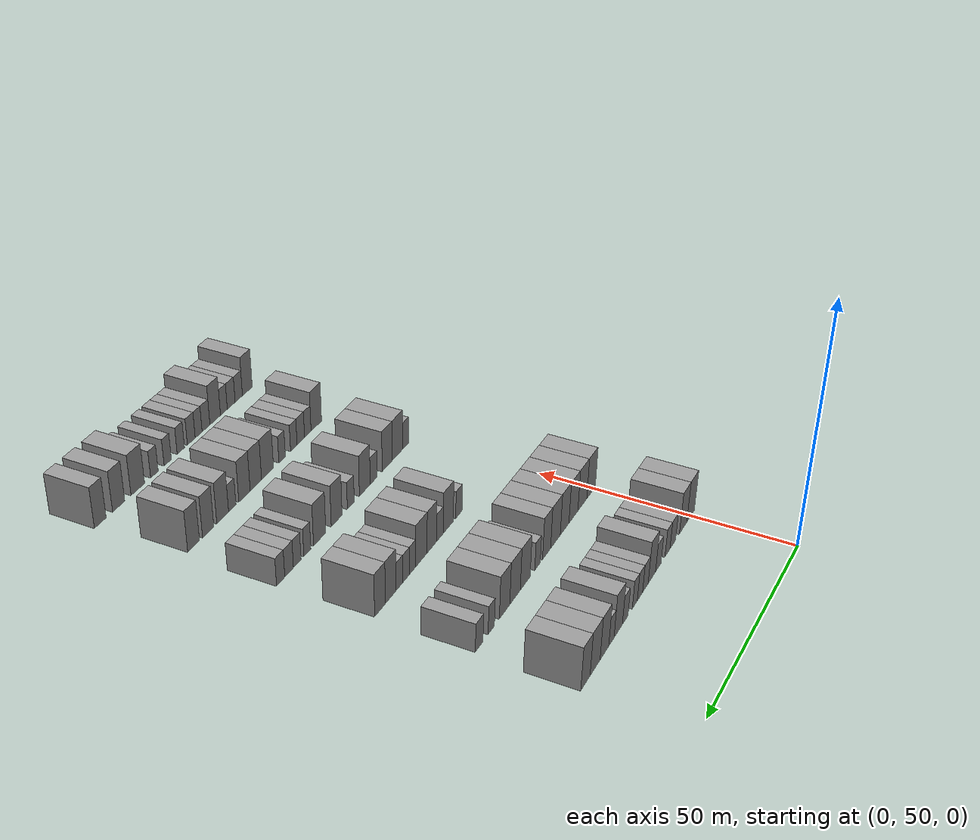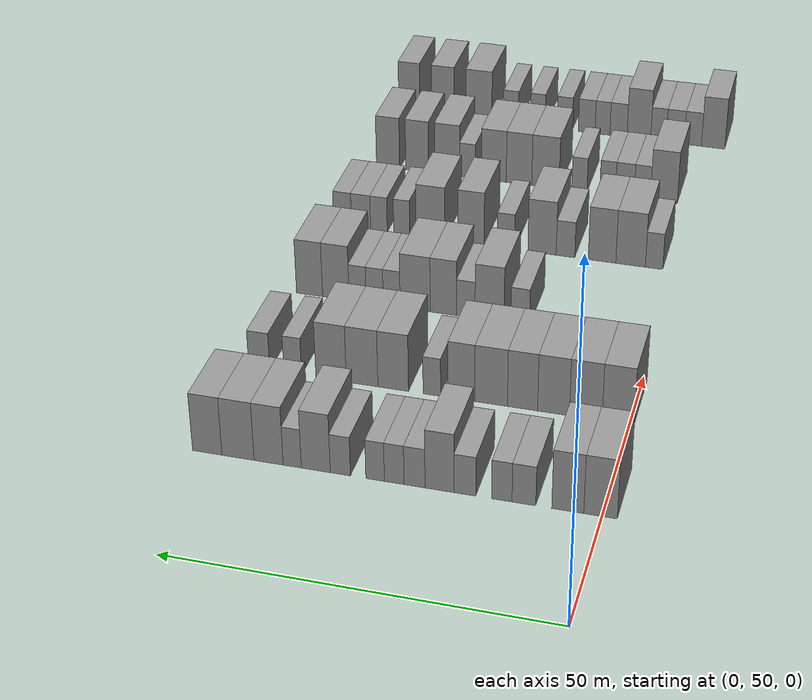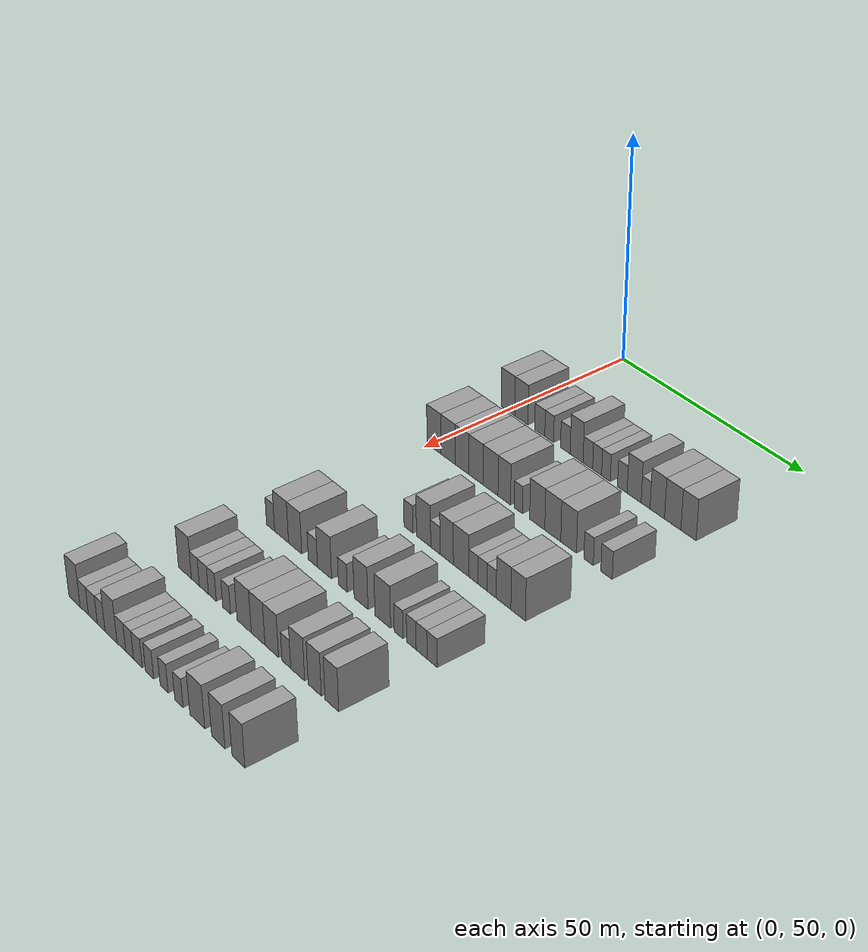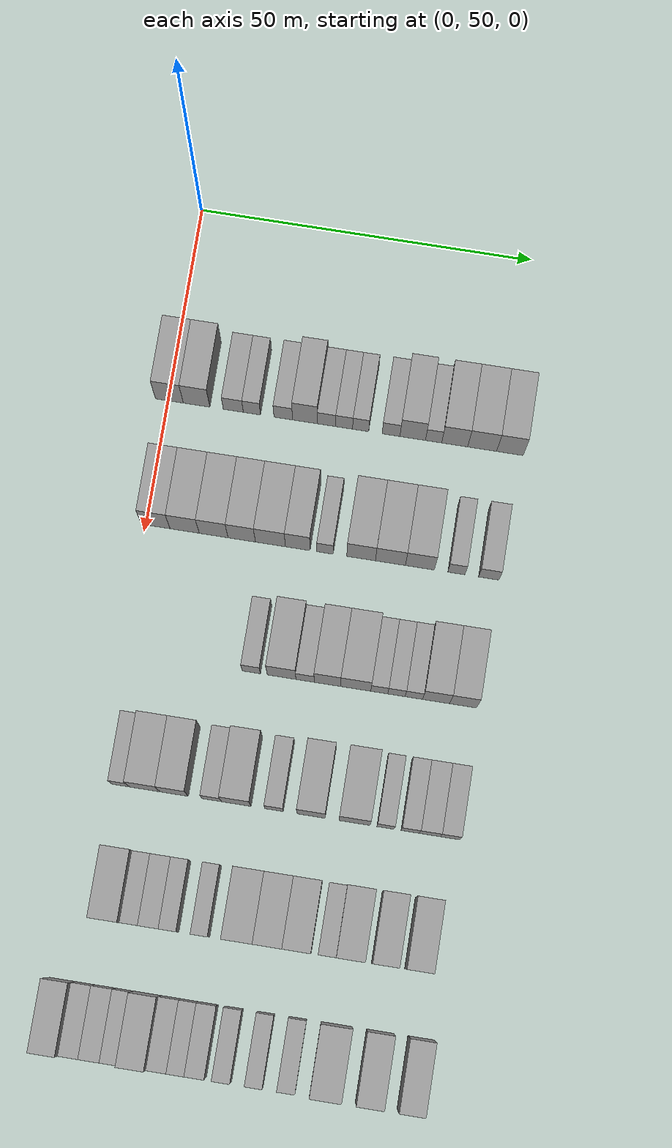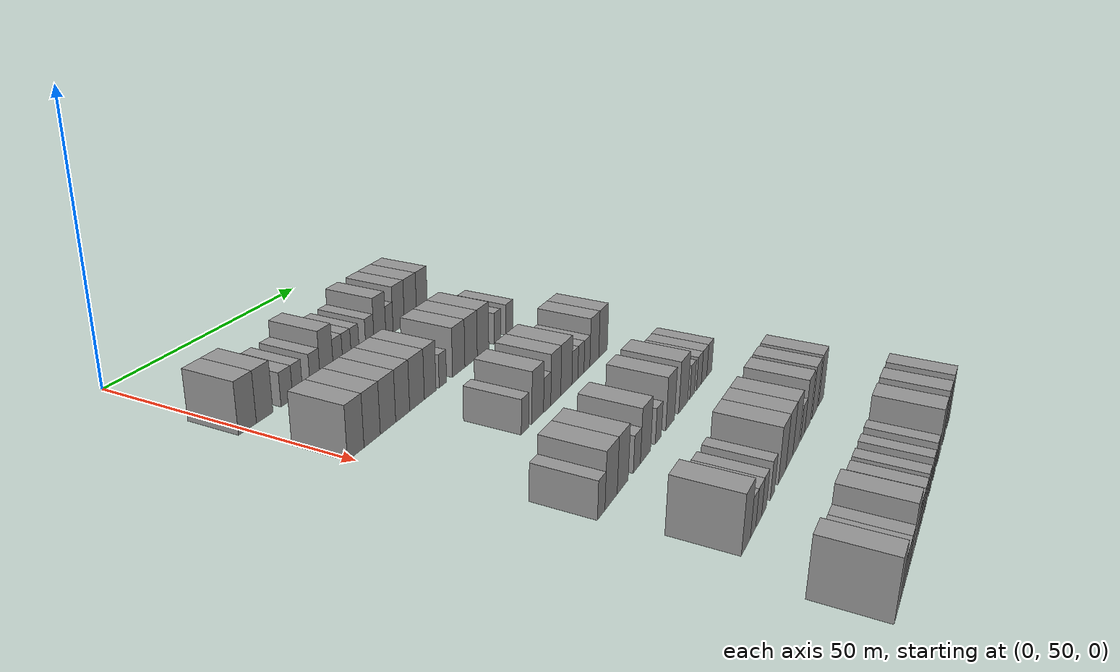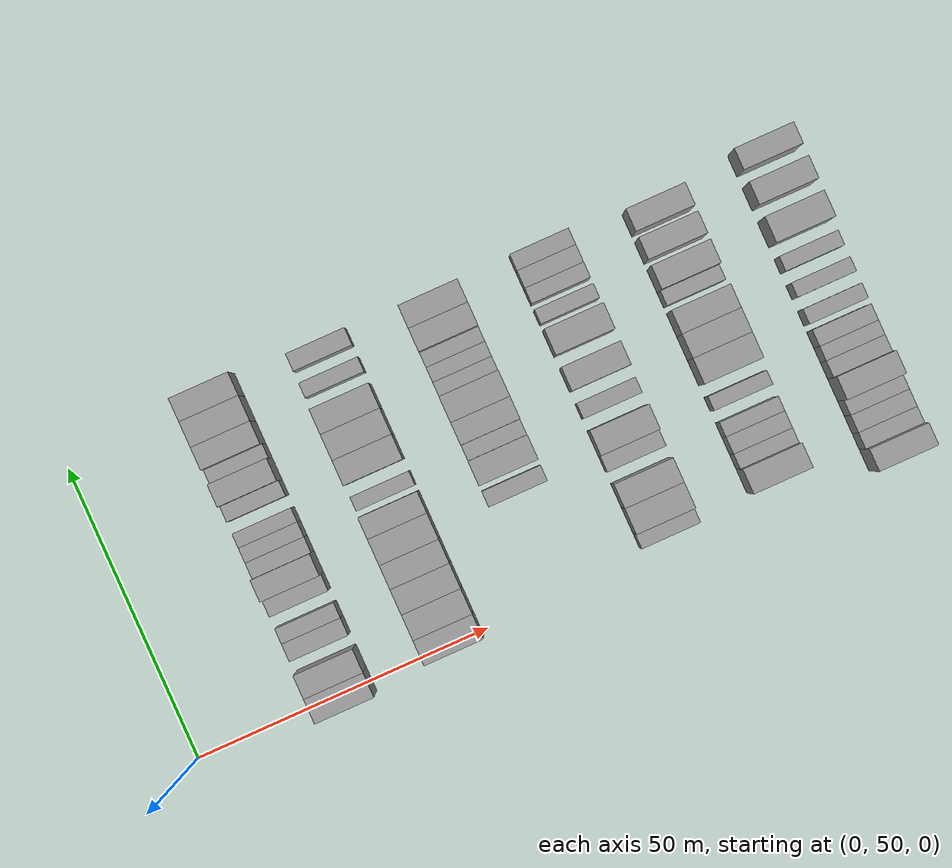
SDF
<sdf version="1.6">
 <world name="default">
  <model name="building_102">
   <static>1</static>
   <pose>25.0000 50.2317 0 0.000000 0.000000 0.000000</pose>
   <link name="link">
    <pose>0 0 4.50 0 0 0</pose>
    <collision name="collision"><geometry><box><size>10.0000 4.1653 9.0000</size></box></geometry></collision>
    <visual name="visual">
     <cast_shadows>0</cast_shadows>
     <geometry><box><size>10.0000 4.1653 9.0000</size></box></geometry>
     <material>
      <script>
       <uri>model://grey_wall/materials/scripts</uri>
       <uri>model://grey_wall/materials/textures</uri>
       <name>vrc/grey_wall</name>
      </script>
     </material>
    </visual>
   </link>
  </model>
  <model name="building_103">
   <static>1</static>
   <pose>25.0000 54.3051 0 0.000000 0.000000 0.000000</pose>
   <link name="link">
    <pose>0 0 4.50 0 0 0</pose>
    <collision name="collision"><geometry><box><size>10.0000 3.9814 9.0000</size></box></geometry></collision>
    <visual name="visual">
     <cast_shadows>0</cast_shadows>
     <geometry><box><size>10.0000 3.9814 9.0000</size></box></geometry>
     <material>
      <script>
       <uri>model://grey_wall/materials/scripts</uri>
       <uri>model://grey_wall/materials/textures</uri>
       <name>vrc/grey_wall</name>
      </script>
     </material>
    </visual>
   </link>
  </model>
  <model name="building_104">
   <static>1</static>
   <pose>25.0000 59.7928 0 0.000000 0.000000 0.000000</pose>
   <link name="link">
    <pose>0 0 3.00 0 0 0</pose>
    <collision name="collision"><geometry><box><size>10.0000 2.9940 6.0000</size></box></geometry></collision>
    <visual name="visual">
     <cast_shadows>0</cast_shadows>
     <geometry><box><size>10.0000 2.9940 6.0000</size></box></geometry>
     <material>
      <script>
       <uri>model://grey_wall/materials/scripts</uri>
       <uri>model://grey_wall/materials/textures</uri>
       <name>vrc/grey_wall</name>
      </script>
     </material>
    </visual>
   </link>
  </model>
  <model name="building_105">
   <static>1</static>
   <pose>25.0000 62.5800 0 0.000000 0.000000 0.000000</pose>
   <link name="link">
    <pose>0 0 3.00 0 0 0</pose>
    <collision name="collision"><geometry><box><size>10.0000 2.5805 6.0000</size></box></geometry></collision>
    <visual name="visual">
     <cast_shadows>0</cast_shadows>
     <geometry><box><size>10.0000 2.5805 6.0000</size></box></geometry>
     <material>
      <script>
       <uri>model://grey_wall/materials/scripts</uri>
       <uri>model://grey_wall/materials/textures</uri>
       <name>vrc/grey_wall</name>
      </script>
     </material>
    </visual>
   </link>
  </model>
  <model name="building_106">
   <static>1</static>
   <pose>25.0000 67.2604 0 0.000000 0.000000 0.000000</pose>
   <link name="link">
    <pose>0 0 3.00 0 0 0</pose>
    <collision name="collision"><geometry><box><size>10.0000 2.7802 6.0000</size></box></geometry></collision>
    <visual name="visual">
     <cast_shadows>0</cast_shadows>
     <geometry><box><size>10.0000 2.7802 6.0000</size></box></geometry>
     <material>
      <script>
       <uri>model://grey_wall/materials/scripts</uri>
       <uri>model://grey_wall/materials/textures</uri>
       <name>vrc/grey_wall</name>
      </script>
     </material>
    </visual>
   </link>
  </model>
  <model name="building_107">
   <static>1</static>
   <pose>25.0000 70.5010 0 0.000000 0.000000 0.000000</pose>
   <link name="link">
    <pose>0 0 4.50 0 0 0</pose>
    <collision name="collision"><geometry><box><size>10.0000 3.7010 9.0000</size></box></geometry></collision>
    <visual name="visual">
     <cast_shadows>0</cast_shadows>
     <geometry><box><size>10.0000 3.7010 9.0000</size></box></geometry>
     <material>
      <script>
       <uri>model://grey_wall/materials/scripts</uri>
       <uri>model://grey_wall/materials/textures</uri>
       <name>vrc/grey_wall</name>
      </script>
     </material>
    </visual>
   </link>
  </model>
  <model name="building_108">
   <static>1</static>
   <pose>25.0000 73.7068 0 0.000000 0.000000 0.000000</pose>
   <link name="link">
    <pose>0 0 3.00 0 0 0</pose>
    <collision name="collision"><geometry><box><size>10.0000 2.7107 6.0000</size></box></geometry></collision>
    <visual name="visual">
     <cast_shadows>0</cast_shadows>
     <geometry><box><size>10.0000 2.7107 6.0000</size></box></geometry>
     <material>
      <script>
       <uri>model://grey_wall/materials/scripts</uri>
       <uri>model://grey_wall/materials/textures</uri>
       <name>vrc/grey_wall</name>
      </script>
     </material>
    </visual>
   </link>
  </model>
  <model name="building_109">
   <static>1</static>
   <pose>25.0000 76.3299 0 0.000000 0.000000 0.000000</pose>
   <link name="link">
    <pose>0 0 3.00 0 0 0</pose>
    <collision name="collision"><geometry><box><size>10.0000 2.5353 6.0000</size></box></geometry></collision>
    <visual name="visual">
     <cast_shadows>0</cast_shadows>
     <geometry><box><size>10.0000 2.5353 6.0000</size></box></geometry>
     <material>
      <script>
       <uri>model://grey_wall/materials/scripts</uri>
       <uri>model://grey_wall/materials/textures</uri>
       <name>vrc/grey_wall</name>
      </script>
     </material>
    </visual>
   </link>
  </model>
  <model name="building_110">
   <static>1</static>
   <pose>25.0000 78.8004 0 0.000000 0.000000 0.000000</pose>
   <link name="link">
    <pose>0 0 3.00 0 0 0</pose>
    <collision name="collision"><geometry><box><size>10.0000 2.4057 6.0000</size></box></geometry></collision>
    <visual name="visual">
     <cast_shadows>0</cast_shadows>
     <geometry><box><size>10.0000 2.4057 6.0000</size></box></geometry>
     <material>
      <script>
       <uri>model://grey_wall/materials/scripts</uri>
       <uri>model://grey_wall/materials/textures</uri>
       <name>vrc/grey_wall</name>
      </script>
     </material>
    </visual>
   </link>
  </model>
  <model name="building_111">
   <static>1</static>
   <pose>25.0000 83.3237 0 0.000000 0.000000 0.000000</pose>
   <link name="link">
    <pose>0 0 3.00 0 0 0</pose>
    <collision name="collision"><geometry><box><size>10.0000 2.6409 6.0000</size></box></geometry></collision>
    <visual name="visual">
     <cast_shadows>0</cast_shadows>
     <geometry><box><size>10.0000 2.6409 6.0000</size></box></geometry>
     <material>
      <script>
       <uri>model://grey_wall/materials/scripts</uri>
       <uri>model://grey_wall/materials/textures</uri>
       <name>vrc/grey_wall</name>
      </script>
     </material>
    </visual>
   </link>
  </model>
  <model name="building_112">
   <static>1</static>
   <pose>25.0000 86.5483 0 0.000000 0.000000 0.000000</pose>
   <link name="link">
    <pose>0 0 4.50 0 0 0</pose>
    <collision name="collision"><geometry><box><size>10.0000 3.8083 9.0000</size></box></geometry></collision>
    <visual name="visual">
     <cast_shadows>0</cast_shadows>
     <geometry><box><size>10.0000 3.8083 9.0000</size></box></geometry>
     <material>
      <script>
       <uri>model://grey_wall/materials/scripts</uri>
       <uri>model://grey_wall/materials/textures</uri>
       <name>vrc/grey_wall</name>
      </script>
     </material>
    </visual>
   </link>
  </model>
  <model name="building_113">
   <static>1</static>
   <pose>25.0000 89.6528 0 0.000000 0.000000 0.000000</pose>
   <link name="link">
    <pose>0 0 3.00 0 0 0</pose>
    <collision name="collision"><geometry><box><size>10.0000 2.4007 6.0000</size></box></geometry></collision>
    <visual name="visual">
     <cast_shadows>0</cast_shadows>
     <geometry><box><size>10.0000 2.4007 6.0000</size></box></geometry>
     <material>
      <script>
       <uri>model://grey_wall/materials/scripts</uri>
       <uri>model://grey_wall/materials/textures</uri>
       <name>vrc/grey_wall</name>
      </script>
     </material>
    </visual>
   </link>
  </model>
  <model name="building_114">
   <static>1</static>
   <pose>25.0000 92.7837 0 0.000000 0.000000 0.000000</pose>
   <link name="link">
    <pose>0 0 4.50 0 0 0</pose>
    <collision name="collision"><geometry><box><size>10.0000 3.8611 9.0000</size></box></geometry></collision>
    <visual name="visual">
     <cast_shadows>0</cast_shadows>
     <geometry><box><size>10.0000 3.8611 9.0000</size></box></geometry>
     <material>
      <script>
       <uri>model://grey_wall/materials/scripts</uri>
       <uri>model://grey_wall/materials/textures</uri>
       <name>vrc/grey_wall</name>
      </script>
     </material>
    </visual>
   </link>
  </model>
  <model name="building_115">
   <static>1</static>
   <pose>25.0000 96.8676 0 0.000000 0.000000 0.000000</pose>
   <link name="link">
    <pose>0 0 4.50 0 0 0</pose>
    <collision name="collision"><geometry><box><size>10.0000 4.3067 9.0000</size></box></geometry></collision>
    <visual name="visual">
     <cast_shadows>0</cast_shadows>
     <geometry><box><size>10.0000 4.3067 9.0000</size></box></geometry>
     <material>
      <script>
       <uri>model://grey_wall/materials/scripts</uri>
       <uri>model://grey_wall/materials/textures</uri>
       <name>vrc/grey_wall</name>
      </script>
     </material>
    </visual>
   </link>
  </model>
  <model name="building_116">
   <static>1</static>
   <pose>25.0000 100.9973 0 0.000000 0.000000 0.000000</pose>
   <link name="link">
    <pose>0 0 4.50 0 0 0</pose>
    <collision name="collision"><geometry><box><size>10.0000 3.9528 9.0000</size></box></geometry></collision>
    <visual name="visual">
     <cast_shadows>0</cast_shadows>
     <geometry><box><size>10.0000 3.9528 9.0000</size></box></geometry>
     <material>
      <script>
       <uri>model://grey_wall/materials/scripts</uri>
       <uri>model://grey_wall/materials/textures</uri>
       <name>vrc/grey_wall</name>
      </script>
     </material>
    </visual>
   </link>
  </model>
  <model name="building_275">
   <static>1</static>
   <pose>44.0000 51.5263 0 0.000000 0.000000 0.000000</pose>
   <link name="link">
    <pose>0 0 4.50 0 0 0</pose>
    <collision name="collision"><geometry><box><size>10.0000 4.2127 9.0000</size></box></geometry></collision>
    <visual name="visual">
     <cast_shadows>0</cast_shadows>
     <geometry><box><size>10.0000 4.2127 9.0000</size></box></geometry>
     <material>
      <script>
       <uri>model://grey_wall/materials/scripts</uri>
       <uri>model://grey_wall/materials/textures</uri>
       <name>vrc/grey_wall</name>
      </script>
     </material>
    </visual>
   </link>
  </model>
  <model name="building_276">
   <static>1</static>
   <pose>44.0000 55.7948 0 0.000000 0.000000 0.000000</pose>
   <link name="link">
    <pose>0 0 4.50 0 0 0</pose>
    <collision name="collision"><geometry><box><size>10.0000 4.3244 9.0000</size></box></geometry></collision>
    <visual name="visual">
     <cast_shadows>0</cast_shadows>
     <geometry><box><size>10.0000 4.3244 9.0000</size></box></geometry>
     <material>
      <script>
       <uri>model://grey_wall/materials/scripts</uri>
       <uri>model://grey_wall/materials/textures</uri>
       <name>vrc/grey_wall</name>
      </script>
     </material>
    </visual>
   </link>
  </model>
  <model name="building_277">
   <static>1</static>
   <pose>44.0000 60.0898 0 0.000000 0.000000 0.000000</pose>
   <link name="link">
    <pose>0 0 4.50 0 0 0</pose>
    <collision name="collision"><geometry><box><size>10.0000 4.2655 9.0000</size></box></geometry></collision>
    <visual name="visual">
     <cast_shadows>0</cast_shadows>
     <geometry><box><size>10.0000 4.2655 9.0000</size></box></geometry>
     <material>
      <script>
       <uri>model://grey_wall/materials/scripts</uri>
       <uri>model://grey_wall/materials/textures</uri>
       <name>vrc/grey_wall</name>
      </script>
     </material>
    </visual>
   </link>
  </model>
  <model name="building_278">
   <static>1</static>
   <pose>44.0000 64.2443 0 0.000000 0.000000 0.000000</pose>
   <link name="link">
    <pose>0 0 4.50 0 0 0</pose>
    <collision name="collision"><geometry><box><size>10.0000 4.0435 9.0000</size></box></geometry></collision>
    <visual name="visual">
     <cast_shadows>0</cast_shadows>
     <geometry><box><size>10.0000 4.0435 9.0000</size></box></geometry>
     <material>
      <script>
       <uri>model://grey_wall/materials/scripts</uri>
       <uri>model://grey_wall/materials/textures</uri>
       <name>vrc/grey_wall</name>
      </script>
     </material>
    </visual>
   </link>
  </model>
  <model name="building_279">
   <static>1</static>
   <pose>44.0000 68.4744 0 0.000000 0.000000 0.000000</pose>
   <link name="link">
    <pose>0 0 4.50 0 0 0</pose>
    <collision name="collision"><geometry><box><size>10.0000 4.4166 9.0000</size></box></geometry></collision>
    <visual name="visual">
     <cast_shadows>0</cast_shadows>
     <geometry><box><size>10.0000 4.4166 9.0000</size></box></geometry>
     <material>
      <script>
       <uri>model://grey_wall/materials/scripts</uri>
       <uri>model://grey_wall/materials/textures</uri>
       <name>vrc/grey_wall</name>
      </script>
     </material>
    </visual>
   </link>
  </model>
  <model name="building_280">
   <static>1</static>
   <pose>44.0000 72.5005 0 0.000000 0.000000 0.000000</pose>
   <link name="link">
    <pose>0 0 4.50 0 0 0</pose>
    <collision name="collision"><geometry><box><size>10.0000 3.6355 9.0000</size></box></geometry></collision>
    <visual name="visual">
     <cast_shadows>0</cast_shadows>
     <geometry><box><size>10.0000 3.6355 9.0000</size></box></geometry>
     <material>
      <script>
       <uri>model://grey_wall/materials/scripts</uri>
       <uri>model://grey_wall/materials/textures</uri>
       <name>vrc/grey_wall</name>
      </script>
     </material>
    </visual>
   </link>
  </model>
  <model name="building_281">
   <static>1</static>
   <pose>44.0000 76.5206 0 0.000000 0.000000 0.000000</pose>
   <link name="link">
    <pose>0 0 3.00 0 0 0</pose>
    <collision name="collision"><geometry><box><size>10.0000 2.4048 6.0000</size></box></geometry></collision>
    <visual name="visual">
     <cast_shadows>0</cast_shadows>
     <geometry><box><size>10.0000 2.4048 6.0000</size></box></geometry>
     <material>
      <script>
       <uri>model://grey_wall/materials/scripts</uri>
       <uri>model://grey_wall/materials/textures</uri>
       <name>vrc/grey_wall</name>
      </script>
     </material>
    </visual>
   </link>
  </model>
  <model name="building_282">
   <static>1</static>
   <pose>44.0000 81.8365 0 0.000000 0.000000 0.000000</pose>
   <link name="link">
    <pose>0 0 4.50 0 0 0</pose>
    <collision name="collision"><geometry><box><size>10.0000 4.2271 9.0000</size></box></geometry></collision>
    <visual name="visual">
     <cast_shadows>0</cast_shadows>
     <geometry><box><size>10.0000 4.2271 9.0000</size></box></geometry>
     <material>
      <script>
       <uri>model://grey_wall/materials/scripts</uri>
       <uri>model://grey_wall/materials/textures</uri>
       <name>vrc/grey_wall</name>
      </script>
     </material>
    </visual>
   </link>
  </model>
  <model name="building_283">
   <static>1</static>
   <pose>44.0000 86.1458 0 0.000000 0.000000 0.000000</pose>
   <link name="link">
    <pose>0 0 4.50 0 0 0</pose>
    <collision name="collision"><geometry><box><size>10.0000 4.3913 9.0000</size></box></geometry></collision>
    <visual name="visual">
     <cast_shadows>0</cast_shadows>
     <geometry><box><size>10.0000 4.3913 9.0000</size></box></geometry>
     <material>
      <script>
       <uri>model://grey_wall/materials/scripts</uri>
       <uri>model://grey_wall/materials/textures</uri>
       <name>vrc/grey_wall</name>
      </script>
     </material>
    </visual>
   </link>
  </model>
  <model name="building_284">
   <static>1</static>
   <pose>44.0000 90.4707 0 0.000000 0.000000 0.000000</pose>
   <link name="link">
    <pose>0 0 4.50 0 0 0</pose>
    <collision name="collision"><geometry><box><size>10.0000 4.2586 9.0000</size></box></geometry></collision>
    <visual name="visual">
     <cast_shadows>0</cast_shadows>
     <geometry><box><size>10.0000 4.2586 9.0000</size></box></geometry>
     <material>
      <script>
       <uri>model://grey_wall/materials/scripts</uri>
       <uri>model://grey_wall/materials/textures</uri>
       <name>vrc/grey_wall</name>
      </script>
     </material>
    </visual>
   </link>
  </model>
  <model name="building_285">
   <static>1</static>
   <pose>44.0000 95.8546 0 0.000000 0.000000 0.000000</pose>
   <link name="link">
    <pose>0 0 3.00 0 0 0</pose>
    <collision name="collision"><geometry><box><size>10.0000 2.5091 6.0000</size></box></geometry></collision>
    <visual name="visual">
     <cast_shadows>0</cast_shadows>
     <geometry><box><size>10.0000 2.5091 6.0000</size></box></geometry>
     <material>
      <script>
       <uri>model://grey_wall/materials/scripts</uri>
       <uri>model://grey_wall/materials/textures</uri>
       <name>vrc/grey_wall</name>
      </script>
     </material>
    </visual>
   </link>
  </model>
  <model name="building_286">
   <static>1</static>
   <pose>44.0000 100.6001 0 0.000000 0.000000 0.000000</pose>
   <link name="link">
    <pose>0 0 3.00 0 0 0</pose>
    <collision name="collision"><geometry><box><size>10.0000 2.9819 6.0000</size></box></geometry></collision>
    <visual name="visual">
     <cast_shadows>0</cast_shadows>
     <geometry><box><size>10.0000 2.9819 6.0000</size></box></geometry>
     <material>
      <script>
       <uri>model://grey_wall/materials/scripts</uri>
       <uri>model://grey_wall/materials/textures</uri>
       <name>vrc/grey_wall</name>
      </script>
     </material>
    </visual>
   </link>
  </model>
  <model name="building_451">
   <static>1</static>
   <pose>63.0000 68.8240 0 0.000000 0.000000 0.000000</pose>
   <link name="link">
    <pose>0 0 3.00 0 0 0</pose>
    <collision name="collision"><geometry><box><size>10.0000 2.6509 6.0000</size></box></geometry></collision>
    <visual name="visual">
     <cast_shadows>0</cast_shadows>
     <geometry><box><size>10.0000 2.6509 6.0000</size></box></geometry>
     <material>
      <script>
       <uri>model://grey_wall/materials/scripts</uri>
       <uri>model://grey_wall/materials/textures</uri>
       <name>vrc/grey_wall</name>
      </script>
     </material>
    </visual>
   </link>
  </model>
  <model name="building_452">
   <static>1</static>
   <pose>63.0000 73.2362 0 0.000000 0.000000 0.000000</pose>
   <link name="link">
    <pose>0 0 4.50 0 0 0</pose>
    <collision name="collision"><geometry><box><size>10.0000 4.1733 9.0000</size></box></geometry></collision>
    <visual name="visual">
     <cast_shadows>0</cast_shadows>
     <geometry><box><size>10.0000 4.1733 9.0000</size></box></geometry>
     <material>
      <script>
       <uri>model://grey_wall/materials/scripts</uri>
       <uri>model://grey_wall/materials/textures</uri>
       <name>vrc/grey_wall</name>
      </script>
     </material>
    </visual>
   </link>
  </model>
  <model name="building_453">
   <static>1</static>
   <pose>63.0000 76.6540 0 0.000000 0.000000 0.000000</pose>
   <link name="link">
    <pose>0 0 3.00 0 0 0</pose>
    <collision name="collision"><geometry><box><size>10.0000 2.6624 6.0000</size></box></geometry></collision>
    <visual name="visual">
     <cast_shadows>0</cast_shadows>
     <geometry><box><size>10.0000 2.6624 6.0000</size></box></geometry>
     <material>
      <script>
       <uri>model://grey_wall/materials/scripts</uri>
       <uri>model://grey_wall/materials/textures</uri>
       <name>vrc/grey_wall</name>
      </script>
     </material>
    </visual>
   </link>
  </model>
  <model name="building_454">
   <static>1</static>
   <pose>63.0000 79.8944 0 0.000000 0.000000 0.000000</pose>
   <link name="link">
    <pose>0 0 4.50 0 0 0</pose>
    <collision name="collision"><geometry><box><size>10.0000 3.8184 9.0000</size></box></geometry></collision>
    <visual name="visual">
     <cast_shadows>0</cast_shadows>
     <geometry><box><size>10.0000 3.8184 9.0000</size></box></geometry>
     <material>
      <script>
       <uri>model://grey_wall/materials/scripts</uri>
       <uri>model://grey_wall/materials/textures</uri>
       <name>vrc/grey_wall</name>
      </script>
     </material>
    </visual>
   </link>
  </model>
  <model name="building_455">
   <static>1</static>
   <pose>63.0000 84.0074 0 0.000000 0.000000 0.000000</pose>
   <link name="link">
    <pose>0 0 4.50 0 0 0</pose>
    <collision name="collision"><geometry><box><size>10.0000 4.4075 9.0000</size></box></geometry></collision>
    <visual name="visual">
     <cast_shadows>0</cast_shadows>
     <geometry><box><size>10.0000 4.4075 9.0000</size></box></geometry>
     <material>
      <script>
       <uri>model://grey_wall/materials/scripts</uri>
       <uri>model://grey_wall/materials/textures</uri>
       <name>vrc/grey_wall</name>
      </script>
     </material>
    </visual>
   </link>
  </model>
  <model name="building_456">
   <static>1</static>
   <pose>63.0000 87.4447 0 0.000000 0.000000 0.000000</pose>
   <link name="link">
    <pose>0 0 3.00 0 0 0</pose>
    <collision name="collision"><geometry><box><size>10.0000 2.4670 6.0000</size></box></geometry></collision>
    <visual name="visual">
     <cast_shadows>0</cast_shadows>
     <geometry><box><size>10.0000 2.4670 6.0000</size></box></geometry>
     <material>
      <script>
       <uri>model://grey_wall/materials/scripts</uri>
       <uri>model://grey_wall/materials/textures</uri>
       <name>vrc/grey_wall</name>
      </script>
     </material>
    </visual>
   </link>
  </model>
  <model name="building_457">
   <static>1</static>
   <pose>63.0000 89.9429 0 0.000000 0.000000 0.000000</pose>
   <link name="link">
    <pose>0 0 3.00 0 0 0</pose>
    <collision name="collision"><geometry><box><size>10.0000 2.5295 6.0000</size></box></geometry></collision>
    <visual name="visual">
     <cast_shadows>0</cast_shadows>
     <geometry><box><size>10.0000 2.5295 6.0000</size></box></geometry>
     <material>
      <script>
       <uri>model://grey_wall/materials/scripts</uri>
       <uri>model://grey_wall/materials/textures</uri>
       <name>vrc/grey_wall</name>
      </script>
     </material>
    </visual>
   </link>
  </model>
  <model name="building_458">
   <static>1</static>
   <pose>63.0000 92.4678 0 0.000000 0.000000 0.000000</pose>
   <link name="link">
    <pose>0 0 3.00 0 0 0</pose>
    <collision name="collision"><geometry><box><size>10.0000 2.5204 6.0000</size></box></geometry></collision>
    <visual name="visual">
     <cast_shadows>0</cast_shadows>
     <geometry><box><size>10.0000 2.5204 6.0000</size></box></geometry>
     <material>
      <script>
       <uri>model://grey_wall/materials/scripts</uri>
       <uri>model://grey_wall/materials/textures</uri>
       <name>vrc/grey_wall</name>
      </script>
     </material>
    </visual>
   </link>
  </model>
  <model name="building_459">
   <static>1</static>
   <pose>63.0000 95.6936 0 0.000000 0.000000 0.000000</pose>
   <link name="link">
    <pose>0 0 4.50 0 0 0</pose>
    <collision name="collision"><geometry><box><size>10.0000 3.9311 9.0000</size></box></geometry></collision>
    <visual name="visual">
     <cast_shadows>0</cast_shadows>
     <geometry><box><size>10.0000 3.9311 9.0000</size></box></geometry>
     <material>
      <script>
       <uri>model://grey_wall/materials/scripts</uri>
       <uri>model://grey_wall/materials/textures</uri>
       <name>vrc/grey_wall</name>
      </script>
     </material>
    </visual>
   </link>
  </model>
  <model name="building_460">
   <static>1</static>
   <pose>63.0000 99.6096 0 0.000000 0.000000 0.000000</pose>
   <link name="link">
    <pose>0 0 4.50 0 0 0</pose>
    <collision name="collision"><geometry><box><size>10.0000 3.9009 9.0000</size></box></geometry></collision>
    <visual name="visual">
     <cast_shadows>0</cast_shadows>
     <geometry><box><size>10.0000 3.9009 9.0000</size></box></geometry>
     <material>
      <script>
       <uri>model://grey_wall/materials/scripts</uri>
       <uri>model://grey_wall/materials/textures</uri>
       <name>vrc/grey_wall</name>
      </script>
     </material>
    </visual>
   </link>
  </model>
  <model name="building_623">
   <static>1</static>
   <pose>82.0000 53.1315 0 0.000000 0.000000 0.000000</pose>
   <link name="link">
    <pose>0 0 3.00 0 0 0</pose>
    <collision name="collision"><geometry><box><size>10.0000 2.5575 6.0000</size></box></geometry></collision>
    <visual name="visual">
     <cast_shadows>0</cast_shadows>
     <geometry><box><size>10.0000 2.5575 6.0000</size></box></geometry>
     <material>
      <script>
       <uri>model://grey_wall/materials/scripts</uri>
       <uri>model://grey_wall/materials/textures</uri>
       <name>vrc/grey_wall</name>
      </script>
     </material>
    </visual>
   </link>
  </model>
  <model name="building_624">
   <static>1</static>
   <pose>82.0000 56.5993 0 0.000000 0.000000 0.000000</pose>
   <link name="link">
    <pose>0 0 4.50 0 0 0</pose>
    <collision name="collision"><geometry><box><size>10.0000 4.3783 9.0000</size></box></geometry></collision>
    <visual name="visual">
     <cast_shadows>0</cast_shadows>
     <geometry><box><size>10.0000 4.3783 9.0000</size></box></geometry>
     <material>
      <script>
       <uri>model://grey_wall/materials/scripts</uri>
       <uri>model://grey_wall/materials/textures</uri>
       <name>vrc/grey_wall</name>
      </script>
     </material>
    </visual>
   </link>
  </model>
  <model name="building_625">
   <static>1</static>
   <pose>82.0000 60.8409 0 0.000000 0.000000 0.000000</pose>
   <link name="link">
    <pose>0 0 4.50 0 0 0</pose>
    <collision name="collision"><geometry><box><size>10.0000 4.1048 9.0000</size></box></geometry></collision>
    <visual name="visual">
     <cast_shadows>0</cast_shadows>
     <geometry><box><size>10.0000 4.1048 9.0000</size></box></geometry>
     <material>
      <script>
       <uri>model://grey_wall/materials/scripts</uri>
       <uri>model://grey_wall/materials/textures</uri>
       <name>vrc/grey_wall</name>
      </script>
     </material>
    </visual>
   </link>
  </model>
  <model name="building_626">
   <static>1</static>
   <pose>82.0000 66.2934 0 0.000000 0.000000 0.000000</pose>
   <link name="link">
    <pose>0 0 3.00 0 0 0</pose>
    <collision name="collision"><geometry><box><size>10.0000 2.8003 6.0000</size></box></geometry></collision>
    <visual name="visual">
     <cast_shadows>0</cast_shadows>
     <geometry><box><size>10.0000 2.8003 6.0000</size></box></geometry>
     <material>
      <script>
       <uri>model://grey_wall/materials/scripts</uri>
       <uri>model://grey_wall/materials/textures</uri>
       <name>vrc/grey_wall</name>
      </script>
     </material>
    </visual>
   </link>
  </model>
  <model name="building_627">
   <static>1</static>
   <pose>82.0000 69.8217 0 0.000000 0.000000 0.000000</pose>
   <link name="link">
    <pose>0 0 4.50 0 0 0</pose>
    <collision name="collision"><geometry><box><size>10.0000 4.2563 9.0000</size></box></geometry></collision>
    <visual name="visual">
     <cast_shadows>0</cast_shadows>
     <geometry><box><size>10.0000 4.2563 9.0000</size></box></geometry>
     <material>
      <script>
       <uri>model://grey_wall/materials/scripts</uri>
       <uri>model://grey_wall/materials/textures</uri>
       <name>vrc/grey_wall</name>
      </script>
     </material>
    </visual>
   </link>
  </model>
  <model name="building_628">
   <static>1</static>
   <pose>82.0000 75.2691 0 0.000000 0.000000 0.000000</pose>
   <link name="link">
    <pose>0 0 3.00 0 0 0</pose>
    <collision name="collision"><geometry><box><size>10.0000 2.6385 6.0000</size></box></geometry></collision>
    <visual name="visual">
     <cast_shadows>0</cast_shadows>
     <geometry><box><size>10.0000 2.6385 6.0000</size></box></geometry>
     <material>
      <script>
       <uri>model://grey_wall/materials/scripts</uri>
       <uri>model://grey_wall/materials/textures</uri>
       <name>vrc/grey_wall</name>
      </script>
     </material>
    </visual>
   </link>
  </model>
  <model name="building_629">
   <static>1</static>
   <pose>82.0000 80.6000 0 0.000000 0.000000 0.000000</pose>
   <link name="link">
    <pose>0 0 4.50 0 0 0</pose>
    <collision name="collision"><geometry><box><size>10.0000 4.0234 9.0000</size></box></geometry></collision>
    <visual name="visual">
     <cast_shadows>0</cast_shadows>
     <geometry><box><size>10.0000 4.0234 9.0000</size></box></geometry>
     <material>
      <script>
       <uri>model://grey_wall/materials/scripts</uri>
       <uri>model://grey_wall/materials/textures</uri>
       <name>vrc/grey_wall</name>
      </script>
     </material>
    </visual>
   </link>
  </model>
  <model name="building_630">
   <static>1</static>
   <pose>82.0000 86.8301 0 0.000000 0.000000 0.000000</pose>
   <link name="link">
    <pose>0 0 4.50 0 0 0</pose>
    <collision name="collision"><geometry><box><size>10.0000 4.4367 9.0000</size></box></geometry></collision>
    <visual name="visual">
     <cast_shadows>0</cast_shadows>
     <geometry><box><size>10.0000 4.4367 9.0000</size></box></geometry>
     <material>
      <script>
       <uri>model://grey_wall/materials/scripts</uri>
       <uri>model://grey_wall/materials/textures</uri>
       <name>vrc/grey_wall</name>
      </script>
     </material>
    </visual>
   </link>
  </model>
  <model name="building_631">
   <static>1</static>
   <pose>82.0000 91.2812 0 0.000000 0.000000 0.000000</pose>
   <link name="link">
    <pose>0 0 3.00 0 0 0</pose>
    <collision name="collision"><geometry><box><size>10.0000 2.4657 6.0000</size></box></geometry></collision>
    <visual name="visual">
     <cast_shadows>0</cast_shadows>
     <geometry><box><size>10.0000 2.4657 6.0000</size></box></geometry>
     <material>
      <script>
       <uri>model://grey_wall/materials/scripts</uri>
       <uri>model://grey_wall/materials/textures</uri>
       <name>vrc/grey_wall</name>
      </script>
     </material>
    </visual>
   </link>
  </model>
  <model name="building_632">
   <static>1</static>
   <pose>82.0000 94.8271 0 0.000000 0.000000 0.000000</pose>
   <link name="link">
    <pose>0 0 3.00 0 0 0</pose>
    <collision name="collision"><geometry><box><size>10.0000 2.6260 6.0000</size></box></geometry></collision>
    <visual name="visual">
     <cast_shadows>0</cast_shadows>
     <geometry><box><size>10.0000 2.6260 6.0000</size></box></geometry>
     <material>
      <script>
       <uri>model://grey_wall/materials/scripts</uri>
       <uri>model://grey_wall/materials/textures</uri>
       <name>vrc/grey_wall</name>
      </script>
     </material>
    </visual>
   </link>
  </model>
  <model name="building_633">
   <static>1</static>
   <pose>82.0000 97.6266 0 0.000000 0.000000 0.000000</pose>
   <link name="link">
    <pose>0 0 3.00 0 0 0</pose>
    <collision name="collision"><geometry><box><size>10.0000 2.9730 6.0000</size></box></geometry></collision>
    <visual name="visual">
     <cast_shadows>0</cast_shadows>
     <geometry><box><size>10.0000 2.9730 6.0000</size></box></geometry>
     <material>
      <script>
       <uri>model://grey_wall/materials/scripts</uri>
       <uri>model://grey_wall/materials/textures</uri>
       <name>vrc/grey_wall</name>
      </script>
     </material>
    </visual>
   </link>
  </model>
  <model name="building_634">
   <static>1</static>
   <pose>82.0000 100.5078 0 0.000000 0.000000 0.000000</pose>
   <link name="link">
    <pose>0 0 3.00 0 0 0</pose>
    <collision name="collision"><geometry><box><size>10.0000 2.7895 6.0000</size></box></geometry></collision>
    <visual name="visual">
     <cast_shadows>0</cast_shadows>
     <geometry><box><size>10.0000 2.7895 6.0000</size></box></geometry>
     <material>
      <script>
       <uri>model://grey_wall/materials/scripts</uri>
       <uri>model://grey_wall/materials/textures</uri>
       <name>vrc/grey_wall</name>
      </script>
     </material>
    </visual>
   </link>
  </model>
  <model name="building_798">
   <static>1</static>
   <pose>101.0000 54.7952 0 0.000000 0.000000 0.000000</pose>
   <link name="link">
    <pose>0 0 4.50 0 0 0</pose>
    <collision name="collision"><geometry><box><size>10.0000 4.1710 9.0000</size></box></geometry></collision>
    <visual name="visual">
     <cast_shadows>0</cast_shadows>
     <geometry><box><size>10.0000 4.1710 9.0000</size></box></geometry>
     <material>
      <script>
       <uri>model://grey_wall/materials/scripts</uri>
       <uri>model://grey_wall/materials/textures</uri>
       <name>vrc/grey_wall</name>
      </script>
     </material>
    </visual>
   </link>
  </model>
  <model name="building_799">
   <static>1</static>
   <pose>101.0000 58.1535 0 0.000000 0.000000 0.000000</pose>
   <link name="link">
    <pose>0 0 3.00 0 0 0</pose>
    <collision name="collision"><geometry><box><size>10.0000 2.5456 6.0000</size></box></geometry></collision>
    <visual name="visual">
     <cast_shadows>0</cast_shadows>
     <geometry><box><size>10.0000 2.5456 6.0000</size></box></geometry>
     <material>
      <script>
       <uri>model://grey_wall/materials/scripts</uri>
       <uri>model://grey_wall/materials/textures</uri>
       <name>vrc/grey_wall</name>
      </script>
     </material>
    </visual>
   </link>
  </model>
  <model name="building_800">
   <static>1</static>
   <pose>101.0000 60.8779 0 0.000000 0.000000 0.000000</pose>
   <link name="link">
    <pose>0 0 3.00 0 0 0</pose>
    <collision name="collision"><geometry><box><size>10.0000 2.9032 6.0000</size></box></geometry></collision>
    <visual name="visual">
     <cast_shadows>0</cast_shadows>
     <geometry><box><size>10.0000 2.9032 6.0000</size></box></geometry>
     <material>
      <script>
       <uri>model://grey_wall/materials/scripts</uri>
       <uri>model://grey_wall/materials/textures</uri>
       <name>vrc/grey_wall</name>
      </script>
     </material>
    </visual>
   </link>
  </model>
  <model name="building_801">
   <static>1</static>
   <pose>101.0000 63.5658 0 0.000000 0.000000 0.000000</pose>
   <link name="link">
    <pose>0 0 3.00 0 0 0</pose>
    <collision name="collision"><geometry><box><size>10.0000 2.4726 6.0000</size></box></geometry></collision>
    <visual name="visual">
     <cast_shadows>0</cast_shadows>
     <geometry><box><size>10.0000 2.4726 6.0000</size></box></geometry>
     <material>
      <script>
       <uri>model://grey_wall/materials/scripts</uri>
       <uri>model://grey_wall/materials/textures</uri>
       <name>vrc/grey_wall</name>
      </script>
     </material>
    </visual>
   </link>
  </model>
  <model name="building_802">
   <static>1</static>
   <pose>101.0000 68.0028 0 0.000000 0.000000 0.000000</pose>
   <link name="link">
    <pose>0 0 3.00 0 0 0</pose>
    <collision name="collision"><geometry><box><size>10.0000 2.4016 6.0000</size></box></geometry></collision>
    <visual name="visual">
     <cast_shadows>0</cast_shadows>
     <geometry><box><size>10.0000 2.4016 6.0000</size></box></geometry>
     <material>
      <script>
       <uri>model://grey_wall/materials/scripts</uri>
       <uri>model://grey_wall/materials/textures</uri>
       <name>vrc/grey_wall</name>
      </script>
     </material>
    </visual>
   </link>
  </model>
  <model name="building_803">
   <static>1</static>
   <pose>101.0000 73.3802 0 0.000000 0.000000 0.000000</pose>
   <link name="link">
    <pose>0 0 4.50 0 0 0</pose>
    <collision name="collision"><geometry><box><size>10.0000 4.3532 9.0000</size></box></geometry></collision>
    <visual name="visual">
     <cast_shadows>0</cast_shadows>
     <geometry><box><size>10.0000 4.3532 9.0000</size></box></geometry>
     <material>
      <script>
       <uri>model://grey_wall/materials/scripts</uri>
       <uri>model://grey_wall/materials/textures</uri>
       <name>vrc/grey_wall</name>
      </script>
     </material>
    </visual>
   </link>
  </model>
  <model name="building_804">
   <static>1</static>
   <pose>101.0000 77.6026 0 0.000000 0.000000 0.000000</pose>
   <link name="link">
    <pose>0 0 4.50 0 0 0</pose>
    <collision name="collision"><geometry><box><size>10.0000 4.0915 9.0000</size></box></geometry></collision>
    <visual name="visual">
     <cast_shadows>0</cast_shadows>
     <geometry><box><size>10.0000 4.0915 9.0000</size></box></geometry>
     <material>
      <script>
       <uri>model://grey_wall/materials/scripts</uri>
       <uri>model://grey_wall/materials/textures</uri>
       <name>vrc/grey_wall</name>
      </script>
     </material>
    </visual>
   </link>
  </model>
  <model name="building_805">
   <static>1</static>
   <pose>101.0000 81.6471 0 0.000000 0.000000 0.000000</pose>
   <link name="link">
    <pose>0 0 4.50 0 0 0</pose>
    <collision name="collision"><geometry><box><size>10.0000 3.9977 9.0000</size></box></geometry></collision>
    <visual name="visual">
     <cast_shadows>0</cast_shadows>
     <geometry><box><size>10.0000 3.9977 9.0000</size></box></geometry>
     <material>
      <script>
       <uri>model://grey_wall/materials/scripts</uri>
       <uri>model://grey_wall/materials/textures</uri>
       <name>vrc/grey_wall</name>
      </script>
     </material>
    </visual>
   </link>
  </model>
  <model name="building_806">
   <static>1</static>
   <pose>101.0000 85.9104 0 0.000000 0.000000 0.000000</pose>
   <link name="link">
    <pose>0 0 3.00 0 0 0</pose>
    <collision name="collision"><geometry><box><size>10.0000 2.5288 6.0000</size></box></geometry></collision>
    <visual name="visual">
     <cast_shadows>0</cast_shadows>
     <geometry><box><size>10.0000 2.5288 6.0000</size></box></geometry>
     <material>
      <script>
       <uri>model://grey_wall/materials/scripts</uri>
       <uri>model://grey_wall/materials/textures</uri>
       <name>vrc/grey_wall</name>
      </script>
     </material>
    </visual>
   </link>
  </model>
  <model name="building_807">
   <static>1</static>
   <pose>101.0000 89.1816 0 0.000000 0.000000 0.000000</pose>
   <link name="link">
    <pose>0 0 4.50 0 0 0</pose>
    <collision name="collision"><geometry><box><size>10.0000 4.0136 9.0000</size></box></geometry></collision>
    <visual name="visual">
     <cast_shadows>0</cast_shadows>
     <geometry><box><size>10.0000 4.0136 9.0000</size></box></geometry>
     <material>
      <script>
       <uri>model://grey_wall/materials/scripts</uri>
       <uri>model://grey_wall/materials/textures</uri>
       <name>vrc/grey_wall</name>
      </script>
     </material>
    </visual>
   </link>
  </model>
  <model name="building_808">
   <static>1</static>
   <pose>101.0000 94.0507 0 0.000000 0.000000 0.000000</pose>
   <link name="link">
    <pose>0 0 4.50 0 0 0</pose>
    <collision name="collision"><geometry><box><size>10.0000 3.7245 9.0000</size></box></geometry></collision>
    <visual name="visual">
     <cast_shadows>0</cast_shadows>
     <geometry><box><size>10.0000 3.7245 9.0000</size></box></geometry>
     <material>
      <script>
       <uri>model://grey_wall/materials/scripts</uri>
       <uri>model://grey_wall/materials/textures</uri>
       <name>vrc/grey_wall</name>
      </script>
     </material>
    </visual>
   </link>
  </model>
  <model name="building_809">
   <static>1</static>
   <pose>101.0000 98.8156 0 0.000000 0.000000 0.000000</pose>
   <link name="link">
    <pose>0 0 4.50 0 0 0</pose>
    <collision name="collision"><geometry><box><size>10.0000 3.8054 9.0000</size></box></geometry></collision>
    <visual name="visual">
     <cast_shadows>0</cast_shadows>
     <geometry><box><size>10.0000 3.8054 9.0000</size></box></geometry>
     <material>
      <script>
       <uri>model://grey_wall/materials/scripts</uri>
       <uri>model://grey_wall/materials/textures</uri>
       <name>vrc/grey_wall</name>
      </script>
     </material>
    </visual>
   </link>
  </model>
  <model name="building_970">
   <static>1</static>
   <pose>120.0000 49.8570 0 0.000000 0.000000 0.000000</pose>
   <link name="link">
    <pose>0 0 4.50 0 0 0</pose>
    <collision name="collision"><geometry><box><size>10.0000 3.7791 9.0000</size></box></geometry></collision>
    <visual name="visual">
     <cast_shadows>0</cast_shadows>
     <geometry><box><size>10.0000 3.7791 9.0000</size></box></geometry>
     <material>
      <script>
       <uri>model://grey_wall/materials/scripts</uri>
       <uri>model://grey_wall/materials/textures</uri>
       <name>vrc/grey_wall</name>
      </script>
     </material>
    </visual>
   </link>
  </model>
  <model name="building_971">
   <static>1</static>
   <pose>120.0000 53.1437 0 0.000000 0.000000 0.000000</pose>
   <link name="link">
    <pose>0 0 3.00 0 0 0</pose>
    <collision name="collision"><geometry><box><size>10.0000 2.7944 6.0000</size></box></geometry></collision>
    <visual name="visual">
     <cast_shadows>0</cast_shadows>
     <geometry><box><size>10.0000 2.7944 6.0000</size></box></geometry>
     <material>
      <script>
       <uri>model://grey_wall/materials/scripts</uri>
       <uri>model://grey_wall/materials/textures</uri>
       <name>vrc/grey_wall</name>
      </script>
     </material>
    </visual>
   </link>
  </model>
  <model name="building_972">
   <static>1</static>
   <pose>120.0000 56.0139 0 0.000000 0.000000 0.000000</pose>
   <link name="link">
    <pose>0 0 3.00 0 0 0</pose>
    <collision name="collision"><geometry><box><size>10.0000 2.9459 6.0000</size></box></geometry></collision>
    <visual name="visual">
     <cast_shadows>0</cast_shadows>
     <geometry><box><size>10.0000 2.9459 6.0000</size></box></geometry>
     <material>
      <script>
       <uri>model://grey_wall/materials/scripts</uri>
       <uri>model://grey_wall/materials/textures</uri>
       <name>vrc/grey_wall</name>
      </script>
     </material>
    </visual>
   </link>
  </model>
  <model name="building_973">
   <static>1</static>
   <pose>120.0000 58.7577 0 0.000000 0.000000 0.000000</pose>
   <link name="link">
    <pose>0 0 3.00 0 0 0</pose>
    <collision name="collision"><geometry><box><size>10.0000 2.5418 6.0000</size></box></geometry></collision>
    <visual name="visual">
     <cast_shadows>0</cast_shadows>
     <geometry><box><size>10.0000 2.5418 6.0000</size></box></geometry>
     <material>
      <script>
       <uri>model://grey_wall/materials/scripts</uri>
       <uri>model://grey_wall/materials/textures</uri>
       <name>vrc/grey_wall</name>
      </script>
     </material>
    </visual>
   </link>
  </model>
  <model name="building_974">
   <static>1</static>
   <pose>120.0000 61.9731 0 0.000000 0.000000 0.000000</pose>
   <link name="link">
    <pose>0 0 4.50 0 0 0</pose>
    <collision name="collision"><geometry><box><size>10.0000 3.8889 9.0000</size></box></geometry></collision>
    <visual name="visual">
     <cast_shadows>0</cast_shadows>
     <geometry><box><size>10.0000 3.8889 9.0000</size></box></geometry>
     <material>
      <script>
       <uri>model://grey_wall/materials/scripts</uri>
       <uri>model://grey_wall/materials/textures</uri>
       <name>vrc/grey_wall</name>
      </script>
     </material>
    </visual>
   </link>
  </model>
  <model name="building_975">
   <static>1</static>
   <pose>120.0000 65.3261 0 0.000000 0.000000 0.000000</pose>
   <link name="link">
    <pose>0 0 3.00 0 0 0</pose>
    <collision name="collision"><geometry><box><size>10.0000 2.8171 6.0000</size></box></geometry></collision>
    <visual name="visual">
     <cast_shadows>0</cast_shadows>
     <geometry><box><size>10.0000 2.8171 6.0000</size></box></geometry>
     <material>
      <script>
       <uri>model://grey_wall/materials/scripts</uri>
       <uri>model://grey_wall/materials/textures</uri>
       <name>vrc/grey_wall</name>
      </script>
     </material>
    </visual>
   </link>
  </model>
  <model name="building_976">
   <static>1</static>
   <pose>120.0000 67.9656 0 0.000000 0.000000 0.000000</pose>
   <link name="link">
    <pose>0 0 3.00 0 0 0</pose>
    <collision name="collision"><geometry><box><size>10.0000 2.4620 6.0000</size></box></geometry></collision>
    <visual name="visual">
     <cast_shadows>0</cast_shadows>
     <geometry><box><size>10.0000 2.4620 6.0000</size></box></geometry>
     <material>
      <script>
       <uri>model://grey_wall/materials/scripts</uri>
       <uri>model://grey_wall/materials/textures</uri>
       <name>vrc/grey_wall</name>
      </script>
     </material>
    </visual>
   </link>
  </model>
  <model name="building_977">
   <static>1</static>
   <pose>120.0000 70.5837 0 0.000000 0.000000 0.000000</pose>
   <link name="link">
    <pose>0 0 3.00 0 0 0</pose>
    <collision name="collision"><geometry><box><size>10.0000 2.7743 6.0000</size></box></geometry></collision>
    <visual name="visual">
     <cast_shadows>0</cast_shadows>
     <geometry><box><size>10.0000 2.7743 6.0000</size></box></geometry>
     <material>
      <script>
       <uri>model://grey_wall/materials/scripts</uri>
       <uri>model://grey_wall/materials/textures</uri>
       <name>vrc/grey_wall</name>
      </script>
     </material>
    </visual>
   </link>
  </model>
  <model name="building_978">
   <static>1</static>
   <pose>120.0000 74.2451 0 0.000000 0.000000 0.000000</pose>
   <link name="link">
    <pose>0 0 3.00 0 0 0</pose>
    <collision name="collision"><geometry><box><size>10.0000 2.5485 6.0000</size></box></geometry></collision>
    <visual name="visual">
     <cast_shadows>0</cast_shadows>
     <geometry><box><size>10.0000 2.5485 6.0000</size></box></geometry>
     <material>
      <script>
       <uri>model://grey_wall/materials/scripts</uri>
       <uri>model://grey_wall/materials/textures</uri>
       <name>vrc/grey_wall</name>
      </script>
     </material>
    </visual>
   </link>
  </model>
  <model name="building_979">
   <static>1</static>
   <pose>120.0000 78.7446 0 0.000000 0.000000 0.000000</pose>
   <link name="link">
    <pose>0 0 3.00 0 0 0</pose>
    <collision name="collision"><geometry><box><size>10.0000 2.4505 6.0000</size></box></geometry></collision>
    <visual name="visual">
     <cast_shadows>0</cast_shadows>
     <geometry><box><size>10.0000 2.4505 6.0000</size></box></geometry>
     <material>
      <script>
       <uri>model://grey_wall/materials/scripts</uri>
       <uri>model://grey_wall/materials/textures</uri>
       <name>vrc/grey_wall</name>
      </script>
     </material>
    </visual>
   </link>
  </model>
  <model name="building_980">
   <static>1</static>
   <pose>120.0000 83.2295 0 0.000000 0.000000 0.000000</pose>
   <link name="link">
    <pose>0 0 3.00 0 0 0</pose>
    <collision name="collision"><geometry><box><size>10.0000 2.5194 6.0000</size></box></geometry></collision>
    <visual name="visual">
     <cast_shadows>0</cast_shadows>
     <geometry><box><size>10.0000 2.5194 6.0000</size></box></geometry>
     <material>
      <script>
       <uri>model://grey_wall/materials/scripts</uri>
       <uri>model://grey_wall/materials/textures</uri>
       <name>vrc/grey_wall</name>
      </script>
     </material>
    </visual>
   </link>
  </model>
  <model name="building_981">
   <static>1</static>
   <pose>120.0000 88.6934 0 0.000000 0.000000 0.000000</pose>
   <link name="link">
    <pose>0 0 4.50 0 0 0</pose>
    <collision name="collision"><geometry><box><size>10.0000 4.4084 9.0000</size></box></geometry></collision>
    <visual name="visual">
     <cast_shadows>0</cast_shadows>
     <geometry><box><size>10.0000 4.4084 9.0000</size></box></geometry>
     <material>
      <script>
       <uri>model://grey_wall/materials/scripts</uri>
       <uri>model://grey_wall/materials/textures</uri>
       <name>vrc/grey_wall</name>
      </script>
     </material>
    </visual>
   </link>
  </model>
  <model name="building_982">
   <static>1</static>
   <pose>120.0000 94.8195 0 0.000000 0.000000 0.000000</pose>
   <link name="link">
    <pose>0 0 4.50 0 0 0</pose>
    <collision name="collision"><geometry><box><size>10.0000 3.8437 9.0000</size></box></geometry></collision>
    <visual name="visual">
     <cast_shadows>0</cast_shadows>
     <geometry><box><size>10.0000 3.8437 9.0000</size></box></geometry>
     <material>
      <script>
       <uri>model://grey_wall/materials/scripts</uri>
       <uri>model://grey_wall/materials/textures</uri>
       <name>vrc/grey_wall</name>
      </script>
     </material>
    </visual>
   </link>
  </model>
  <model name="building_983">
   <static>1</static>
   <pose>120.0000 100.5583 0 0.000000 0.000000 0.000000</pose>
   <link name="link">
    <pose>0 0 4.50 0 0 0</pose>
    <collision name="collision"><geometry><box><size>10.0000 3.6339 9.0000</size></box></geometry></collision>
    <visual name="visual">
     <cast_shadows>0</cast_shadows>
     <geometry><box><size>10.0000 3.6339 9.0000</size></box></geometry>
     <material>
      <script>
       <uri>model://grey_wall/materials/scripts</uri>
       <uri>model://grey_wall/materials/textures</uri>
       <name>vrc/grey_wall</name>
      </script>
     </material>
    </visual>
   </link>
  </model>
 </world>
</sdf>
